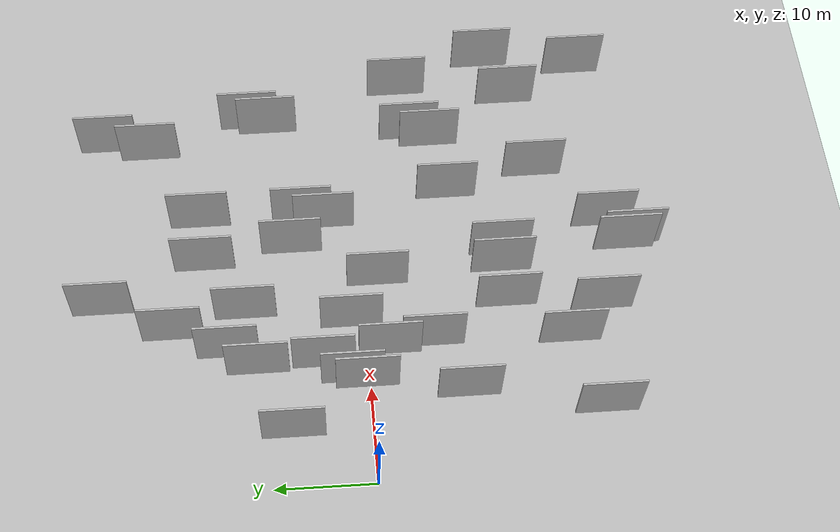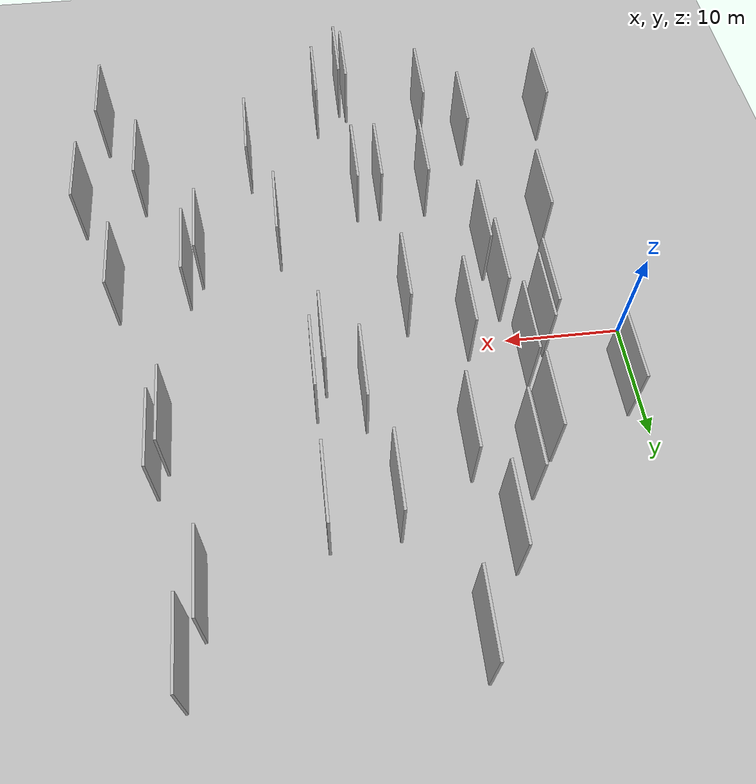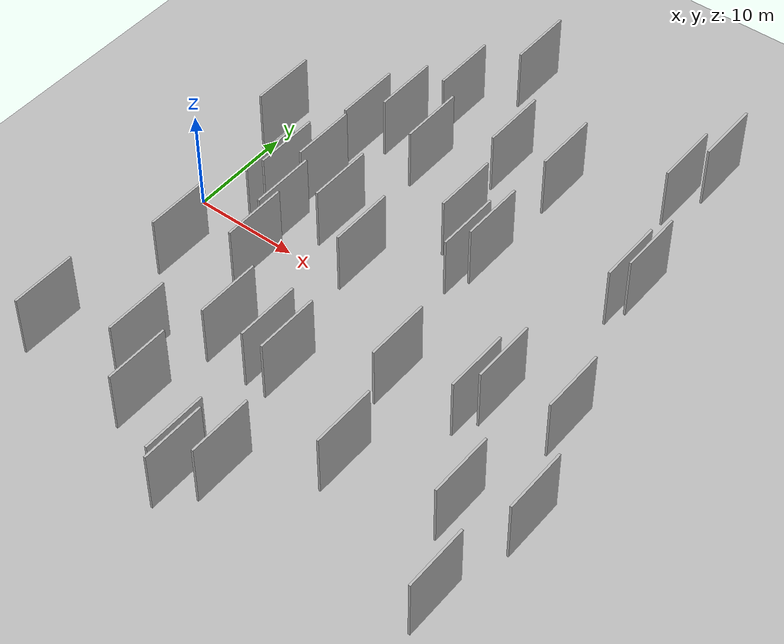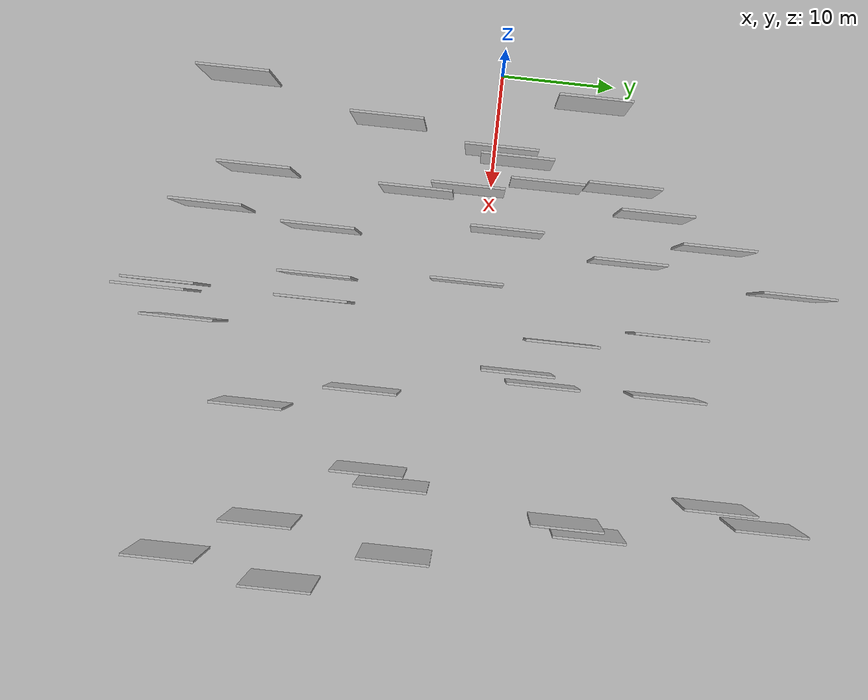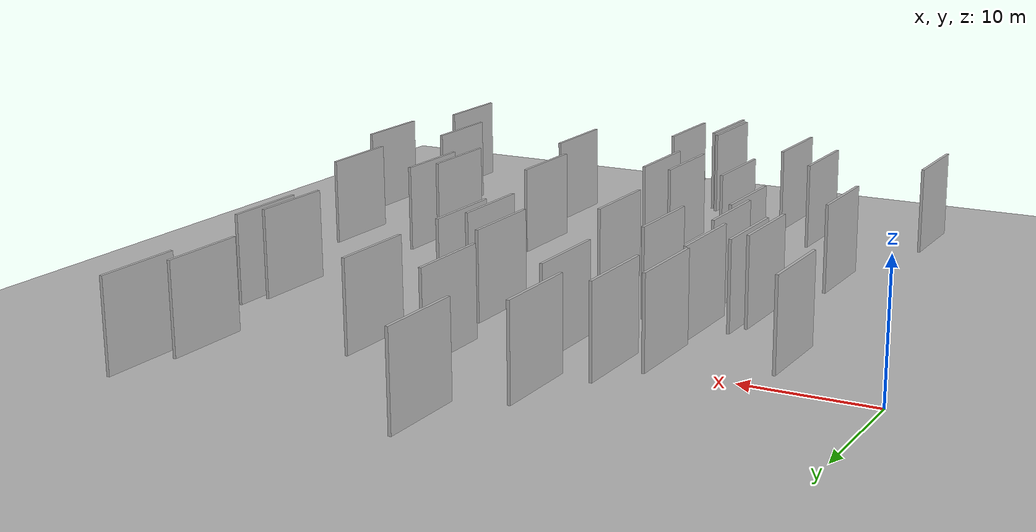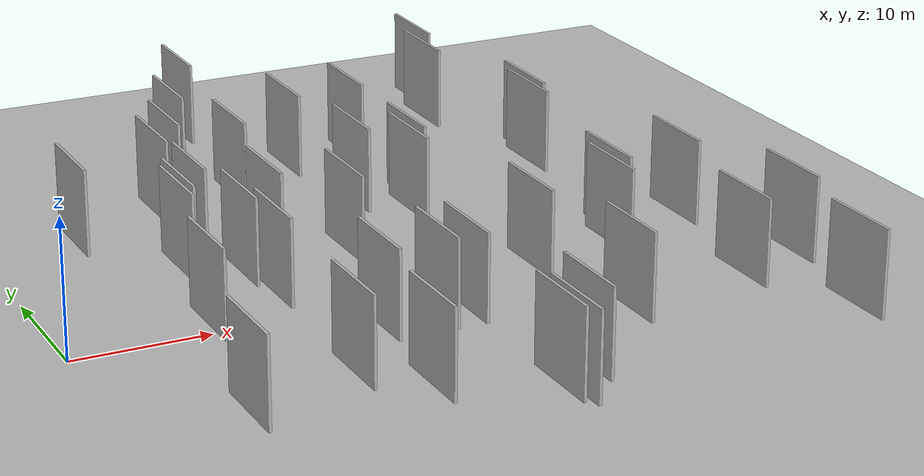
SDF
<?xml version="1.0" encoding="utf-8"?>

<sdf version="1.6">

   <world name="default">

      <gui fullscreen="0">

         <camera name="user_camera">

            <pose>-15 0 4.57585 0 0 0</pose>

            <view_controller>orbit</view_controller>

         </camera>

      </gui>

      <scene>

         <sky>

           <clouds>

             <speed>12</speed>

           </clouds>

         </sky>

         <ambient>0.4 0.4 0.4 1</ambient>

         <background>0.7 0.7 0.7 1</background>

         <shadows>1</shadows>

      </scene>

      <gravity>0 0 -9.8066</gravity>

      <magnetic_field>6e-06 2.3e-05 -4.2e-05</magnetic_field>

      <physics default="0" name="default_physics" type="ode">

         <ode>

            <solver>

               <type>quick</type>

               <iters>10</iters>

               <sor>1.0</sor>

               <use_dynamic_moi_rescaling>0</use_dynamic_moi_rescaling>

            </solver>

            <constraints>

               <cfm>0</cfm>

               <erp>0.2</erp>

               <contact_max_correcting_vel>100</contact_max_correcting_vel>

               <contact_surface_layer>0.001</contact_surface_layer>

            </constraints>

         </ode>

         <max_step_size>0.004</max_step_size>

         <real_time_factor>1</real_time_factor>

         <real_time_update_rate>250</real_time_update_rate>

      </physics>

      <light name="sun" type="directional">

         <cast_shadows>1</cast_shadows>

         <pose>0 0 10 0 0 0</pose>

         <diffuse>0.8 0.8 0.8 1</diffuse>

         <specular>0.2 0.2 0.2 1</specular>

         <attenuation>

            <range>1000</range>

            <constant>0.9</constant>

            <linear>0.01</linear>

            <quadratic>0.001</quadratic>

         </attenuation>

         <direction>-0.5 0.1 -0.9</direction>

      </light>

      <include>

         <name>ground_plane_1</name>

         <uri>model://HANNAS_ground_plane</uri>

         <pose>0 0 0  0 0 0</pose>

      </include>

      <include>

         <name>ground_plane_2</name>

         <uri>model://HANNAS_ground_plane</uri>

         <pose>100 0 0  0 0 0</pose>

      </include>

      <model name="HANNAS_wall_1">

         <static>1</static>

         <pose frame="">3.9259 -21.7571 5.0 0.000000 0.000000 1.570796</pose>

         <link name="link">

            <pose frame="">0 0 3.00 0 0 0</pose>

            <collision name="collision">

               <geometry>

                  <box>

                     <size>6.00 0.2 6.00</size>

                  </box>

               </geometry>

               <max_contacts>10</max_contacts>

               <surface>

                  <contact>

                     <ode/>

                  </contact>

                  <bounce/>

                  <friction>

                     <torsional>

                        <ode/>

                     </torsional>

                     <ode/>

                  </friction>

               </surface>

            </collision>

            <visual name="visual">

               <cast_shadows>0</cast_shadows>

               <geometry>

                  <box>

                     <size>6.00 0.2 6.00</size>

                  </box>

               </geometry>

               <material>

                  <script>

                     <uri>model://HANNAS_wall/materials/scripts</uri>

                     <uri>model://HANNAS_wall/materials/textures</uri>

                     <name>vrc/HANNAS_wall</name>

                  </script>

               </material>

            </visual>

            <self_collide>0</self_collide>

            <enable_wind>0</enable_wind>

            <kinematic>0</kinematic>

         </link>

      </model>

      <model name="HANNAS_wall_2">

         <static>1</static>

         <pose frame="">26.8779 5.8839 5.0 0.000000 0.000000 1.570796</pose>

         <link name="link">

            <pose frame="">0 0 3.00 0 0 0</pose>

            <collision name="collision">

               <geometry>

                  <box>

                     <size>6.00 0.2 6.00</size>

                  </box>

               </geometry>

               <max_contacts>10</max_contacts>

               <surface>

                  <contact>

                     <ode/>

                  </contact>

                  <bounce/>

                  <friction>

                     <torsional>

                        <ode/>

                     </torsional>

                     <ode/>

                  </friction>

               </surface>

            </collision>

            <visual name="visual">

               <cast_shadows>0</cast_shadows>

               <geometry>

                  <box>

                     <size>6.00 0.2 6.00</size>

                  </box>

               </geometry>

               <material>

                  <script>

                     <uri>model://HANNAS_wall/materials/scripts</uri>

                     <uri>model://HANNAS_wall/materials/textures</uri>

                     <name>vrc/HANNAS_wall</name>

                  </script>

               </material>

            </visual>

            <self_collide>0</self_collide>

            <enable_wind>0</enable_wind>

            <kinematic>0</kinematic>

         </link>

      </model>

      <model name="HANNAS_wall_3">

         <static>1</static>

         <pose frame="">36.7139 25.4663 5.0 0.000000 0.000000 1.570796</pose>

         <link name="link">

            <pose frame="">0 0 3.00 0 0 0</pose>

            <collision name="collision">

               <geometry>

                  <box>

                     <size>6.00 0.2 6.00</size>

                  </box>

               </geometry>

               <max_contacts>10</max_contacts>

               <surface>

                  <contact>

                     <ode/>

                  </contact>

                  <bounce/>

                  <friction>

                     <torsional>

                        <ode/>

                     </torsional>

                     <ode/>

                  </friction>

               </surface>

            </collision>

            <visual name="visual">

               <cast_shadows>0</cast_shadows>

               <geometry>

                  <box>

                     <size>6.00 0.2 6.00</size>

                  </box>

               </geometry>

               <material>

                  <script>

                     <uri>model://HANNAS_wall/materials/scripts</uri>

                     <uri>model://HANNAS_wall/materials/textures</uri>

                     <name>vrc/HANNAS_wall</name>

                  </script>

               </material>

            </visual>

            <self_collide>0</self_collide>

            <enable_wind>0</enable_wind>

            <kinematic>0</kinematic>

         </link>

      </model>

      <model name="HANNAS_wall_4">

         <static>1</static>

         <pose frame="">11.3556 -1.8661 5.0 0.000000 0.000000 1.570796</pose>

         <link name="link">

            <pose frame="">0 0 3.00 0 0 0</pose>

            <collision name="collision">

               <geometry>

                  <box>

                     <size>6.00 0.2 6.00</size>

                  </box>

               </geometry>

               <max_contacts>10</max_contacts>

               <surface>

                  <contact>

                     <ode/>

                  </contact>

                  <bounce/>

                  <friction>

                     <torsional>

                        <ode/>

                     </torsional>

                     <ode/>

                  </friction>

               </surface>

            </collision>

            <visual name="visual">

               <cast_shadows>0</cast_shadows>

               <geometry>

                  <box>

                     <size>6.00 0.2 6.00</size>

                  </box>

               </geometry>

               <material>

                  <script>

                     <uri>model://HANNAS_wall/materials/scripts</uri>

                     <uri>model://HANNAS_wall/materials/textures</uri>

                     <name>vrc/HANNAS_wall</name>

                  </script>

               </material>

            </visual>

            <self_collide>0</self_collide>

            <enable_wind>0</enable_wind>

            <kinematic>0</kinematic>

         </link>

      </model>

      <model name="HANNAS_wall_5">

         <static>1</static>

         <pose frame="">42.1782 -4.7063 5.0 0.000000 0.000000 1.570796</pose>

         <link name="link">

            <pose frame="">0 0 3.00 0 0 0</pose>

            <collision name="collision">

               <geometry>

                  <box>

                     <size>6.00 0.2 6.00</size>

                  </box>

               </geometry>

               <max_contacts>10</max_contacts>

               <surface>

                  <contact>

                     <ode/>

                  </contact>

                  <bounce/>

                  <friction>

                     <torsional>

                        <ode/>

                     </torsional>

                     <ode/>

                  </friction>

               </surface>

            </collision>

            <visual name="visual">

               <cast_shadows>0</cast_shadows>

               <geometry>

                  <box>

                     <size>6.00 0.2 6.00</size>

                  </box>

               </geometry>

               <material>

                  <script>

                     <uri>model://HANNAS_wall/materials/scripts</uri>

                     <uri>model://HANNAS_wall/materials/textures</uri>

                     <name>vrc/HANNAS_wall</name>

                  </script>

               </material>

            </visual>

            <self_collide>0</self_collide>

            <enable_wind>0</enable_wind>

            <kinematic>0</kinematic>

         </link>

      </model>

      <model name="HANNAS_wall_6">

         <static>1</static>

         <pose frame="">15.8145 -13.5879 5.0 0.000000 0.000000 1.570796</pose>

         <link name="link">

            <pose frame="">0 0 3.00 0 0 0</pose>

            <collision name="collision">

               <geometry>

                  <box>

                     <size>6.00 0.2 6.00</size>

                  </box>

               </geometry>

               <max_contacts>10</max_contacts>

               <surface>

                  <contact>

                     <ode/>

                  </contact>

                  <bounce/>

                  <friction>

                     <torsional>

                        <ode/>

                     </torsional>

                     <ode/>

                  </friction>

               </surface>

            </collision>

            <visual name="visual">

               <cast_shadows>0</cast_shadows>

               <geometry>

                  <box>

                     <size>6.00 0.2 6.00</size>

                  </box>

               </geometry>

               <material>

                  <script>

                     <uri>model://HANNAS_wall/materials/scripts</uri>

                     <uri>model://HANNAS_wall/materials/textures</uri>

                     <name>vrc/HANNAS_wall</name>

                  </script>

               </material>

            </visual>

            <self_collide>0</self_collide>

            <enable_wind>0</enable_wind>

            <kinematic>0</kinematic>

         </link>

      </model>

      <model name="HANNAS_wall_7">

         <static>1</static>

         <pose frame="">38.7719 10.8940 5.0 0.000000 0.000000 1.570796</pose>

         <link name="link">

            <pose frame="">0 0 3.00 0 0 0</pose>

            <collision name="collision">

               <geometry>

                  <box>

                     <size>6.00 0.2 6.00</size>

                  </box>

               </geometry>

               <max_contacts>10</max_contacts>

               <surface>

                  <contact>

                     <ode/>

                  </contact>

                  <bounce/>

                  <friction>

                     <torsional>

                        <ode/>

                     </torsional>

                     <ode/>

                  </friction>

               </surface>

            </collision>

            <visual name="visual">

               <cast_shadows>0</cast_shadows>

               <geometry>

                  <box>

                     <size>6.00 0.2 6.00</size>

                  </box>

               </geometry>

               <material>

                  <script>

                     <uri>model://HANNAS_wall/materials/scripts</uri>

                     <uri>model://HANNAS_wall/materials/textures</uri>

                     <name>vrc/HANNAS_wall</name>

                  </script>

               </material>

            </visual>

            <self_collide>0</self_collide>

            <enable_wind>0</enable_wind>

            <kinematic>0</kinematic>

         </link>

      </model>

      <model name="HANNAS_wall_8">

         <static>1</static>

         <pose frame="">3.2657 7.6805 5.0 0.000000 0.000000 1.570796</pose>

         <link name="link">

            <pose frame="">0 0 3.00 0 0 0</pose>

            <collision name="collision">

               <geometry>

                  <box>

                     <size>6.00 0.2 6.00</size>

                  </box>

               </geometry>

               <max_contacts>10</max_contacts>

               <surface>

                  <contact>

                     <ode/>

                  </contact>

                  <bounce/>

                  <friction>

                     <torsional>

                        <ode/>

                     </torsional>

                     <ode/>

                  </friction>

               </surface>

            </collision>

            <visual name="visual">

               <cast_shadows>0</cast_shadows>

               <geometry>

                  <box>

                     <size>6.00 0.2 6.00</size>

                  </box>

               </geometry>

               <material>

                  <script>

                     <uri>model://HANNAS_wall/materials/scripts</uri>

                     <uri>model://HANNAS_wall/materials/textures</uri>

                     <name>vrc/HANNAS_wall</name>

                  </script>

               </material>

            </visual>

            <self_collide>0</self_collide>

            <enable_wind>0</enable_wind>

            <kinematic>0</kinematic>

         </link>

      </model>

      <model name="HANNAS_wall_9">

         <static>1</static>

         <pose frame="">38.0455 9.0339 5.0 0.000000 0.000000 1.570796</pose>

         <link name="link">

            <pose frame="">0 0 3.00 0 0 0</pose>

            <collision name="collision">

               <geometry>

                  <box>

                     <size>6.00 0.2 6.00</size>

                  </box>

               </geometry>

               <max_contacts>10</max_contacts>

               <surface>

                  <contact>

                     <ode/>

                  </contact>

                  <bounce/>

                  <friction>

                     <torsional>

                        <ode/>

                     </torsional>

                     <ode/>

                  </friction>

               </surface>

            </collision>

            <visual name="visual">

               <cast_shadows>0</cast_shadows>

               <geometry>

                  <box>

                     <size>6.00 0.2 6.00</size>

                  </box>

               </geometry>

               <material>

                  <script>

                     <uri>model://HANNAS_wall/materials/scripts</uri>

                     <uri>model://HANNAS_wall/materials/textures</uri>

                     <name>vrc/HANNAS_wall</name>

                  </script>

               </material>

            </visual>

            <self_collide>0</self_collide>

            <enable_wind>0</enable_wind>

            <kinematic>0</kinematic>

         </link>

      </model>

      <model name="HANNAS_wall_10">

         <static>1</static>

         <pose frame="">17.4022 25.7129 5.0 0.000000 0.000000 1.570796</pose>

         <link name="link">

            <pose frame="">0 0 3.00 0 0 0</pose>

            <collision name="collision">

               <geometry>

                  <box>

                     <size>6.00 0.2 6.00</size>

                  </box>

               </geometry>

               <max_contacts>10</max_contacts>

               <surface>

                  <contact>

                     <ode/>

                  </contact>

                  <bounce/>

                  <friction>

                     <torsional>

                        <ode/>

                     </torsional>

                     <ode/>

                  </friction>

               </surface>

            </collision>

            <visual name="visual">

               <cast_shadows>0</cast_shadows>

               <geometry>

                  <box>

                     <size>6.00 0.2 6.00</size>

                  </box>

               </geometry>

               <material>

                  <script>

                     <uri>model://HANNAS_wall/materials/scripts</uri>

                     <uri>model://HANNAS_wall/materials/textures</uri>

                     <name>vrc/HANNAS_wall</name>

                  </script>

               </material>

            </visual>

            <self_collide>0</self_collide>

            <enable_wind>0</enable_wind>

            <kinematic>0</kinematic>

         </link>

      </model>

      <model name="HANNAS_wall_11">

         <static>1</static>

         <pose frame="">26.0199 3.7318 5.0 0.000000 0.000000 1.570796</pose>

         <link name="link">

            <pose frame="">0 0 3.00 0 0 0</pose>

            <collision name="collision">

               <geometry>

                  <box>

                     <size>6.00 0.2 6.00</size>

                  </box>

               </geometry>

               <max_contacts>10</max_contacts>

               <surface>

                  <contact>

                     <ode/>

                  </contact>

                  <bounce/>

                  <friction>

                     <torsional>

                        <ode/>

                     </torsional>

                     <ode/>

                  </friction>

               </surface>

            </collision>

            <visual name="visual">

               <cast_shadows>0</cast_shadows>

               <geometry>

                  <box>

                     <size>6.00 0.2 6.00</size>

                  </box>

               </geometry>

               <material>

                  <script>

                     <uri>model://HANNAS_wall/materials/scripts</uri>

                     <uri>model://HANNAS_wall/materials/textures</uri>

                     <name>vrc/HANNAS_wall</name>

                  </script>

               </material>

            </visual>

            <self_collide>0</self_collide>

            <enable_wind>0</enable_wind>

            <kinematic>0</kinematic>

         </link>

      </model>

      <model name="HANNAS_wall_12">

         <static>1</static>

         <pose frame="">7.9821 0.4993 5.0 0.000000 0.000000 1.570796</pose>

         <link name="link">

            <pose frame="">0 0 3.00 0 0 0</pose>

            <collision name="collision">

               <geometry>

                  <box>

                     <size>6.00 0.2 6.00</size>

                  </box>

               </geometry>

               <max_contacts>10</max_contacts>

               <surface>

                  <contact>

                     <ode/>

                  </contact>

                  <bounce/>

                  <friction>

                     <torsional>

                        <ode/>

                     </torsional>

                     <ode/>

                  </friction>

               </surface>

            </collision>

            <visual name="visual">

               <cast_shadows>0</cast_shadows>

               <geometry>

                  <box>

                     <size>6.00 0.2 6.00</size>

                  </box>

               </geometry>

               <material>

                  <script>

                     <uri>model://HANNAS_wall/materials/scripts</uri>

                     <uri>model://HANNAS_wall/materials/textures</uri>

                     <name>vrc/HANNAS_wall</name>

                  </script>

               </material>

            </visual>

            <self_collide>0</self_collide>

            <enable_wind>0</enable_wind>

            <kinematic>0</kinematic>

         </link>

      </model>

      <model name="HANNAS_wall_13">

         <static>1</static>

         <pose frame="">8.5940 1.8616 5.0 0.000000 0.000000 1.570796</pose>

         <link name="link">

            <pose frame="">0 0 3.00 0 0 0</pose>

            <collision name="collision">

               <geometry>

                  <box>

                     <size>6.00 0.2 6.00</size>

                  </box>

               </geometry>

               <max_contacts>10</max_contacts>

               <surface>

                  <contact>

                     <ode/>

                  </contact>

                  <bounce/>

                  <friction>

                     <torsional>

                        <ode/>

                     </torsional>

                     <ode/>

                  </friction>

               </surface>

            </collision>

            <visual name="visual">

               <cast_shadows>0</cast_shadows>

               <geometry>

                  <box>

                     <size>6.00 0.2 6.00</size>

                  </box>

               </geometry>

               <material>

                  <script>

                     <uri>model://HANNAS_wall/materials/scripts</uri>

                     <uri>model://HANNAS_wall/materials/textures</uri>

                     <name>vrc/HANNAS_wall</name>

                  </script>

               </material>

            </visual>

            <self_collide>0</self_collide>

            <enable_wind>0</enable_wind>

            <kinematic>0</kinematic>

         </link>

      </model>

      <model name="HANNAS_wall_14">

         <static>1</static>

         <pose frame="">43.8966 -23.6323 5.0 0.000000 0.000000 1.570796</pose>

         <link name="link">

            <pose frame="">0 0 3.00 0 0 0</pose>

            <collision name="collision">

               <geometry>

                  <box>

                     <size>6.00 0.2 6.00</size>

                  </box>

               </geometry>

               <max_contacts>10</max_contacts>

               <surface>

                  <contact>

                     <ode/>

                  </contact>

                  <bounce/>

                  <friction>

                     <torsional>

                        <ode/>

                     </torsional>

                     <ode/>

                  </friction>

               </surface>

            </collision>

            <visual name="visual">

               <cast_shadows>0</cast_shadows>

               <geometry>

                  <box>

                     <size>6.00 0.2 6.00</size>

                  </box>

               </geometry>

               <material>

                  <script>

                     <uri>model://HANNAS_wall/materials/scripts</uri>

                     <uri>model://HANNAS_wall/materials/textures</uri>

                     <name>vrc/HANNAS_wall</name>

                  </script>

               </material>

            </visual>

            <self_collide>0</self_collide>

            <enable_wind>0</enable_wind>

            <kinematic>0</kinematic>

         </link>

      </model>

      <model name="HANNAS_wall_15">

         <static>1</static>

         <pose frame="">21.7795 15.7730 5.0 0.000000 0.000000 1.570796</pose>

         <link name="link">

            <pose frame="">0 0 3.00 0 0 0</pose>

            <collision name="collision">

               <geometry>

                  <box>

                     <size>6.00 0.2 6.00</size>

                  </box>

               </geometry>

               <max_contacts>10</max_contacts>

               <surface>

                  <contact>

                     <ode/>

                  </contact>

                  <bounce/>

                  <friction>

                     <torsional>

                        <ode/>

                     </torsional>

                     <ode/>

                  </friction>

               </surface>

            </collision>

            <visual name="visual">

               <cast_shadows>0</cast_shadows>

               <geometry>

                  <box>

                     <size>6.00 0.2 6.00</size>

                  </box>

               </geometry>

               <material>

                  <script>

                     <uri>model://HANNAS_wall/materials/scripts</uri>

                     <uri>model://HANNAS_wall/materials/textures</uri>

                     <name>vrc/HANNAS_wall</name>

                  </script>

               </material>

            </visual>

            <self_collide>0</self_collide>

            <enable_wind>0</enable_wind>

            <kinematic>0</kinematic>

         </link>

      </model>

      <model name="HANNAS_wall_16">

         <static>1</static>

         <pose frame="">10.0365 10.7989 5.0 0.000000 0.000000 1.570796</pose>

         <link name="link">

            <pose frame="">0 0 3.00 0 0 0</pose>

            <collision name="collision">

               <geometry>

                  <box>

                     <size>6.00 0.2 6.00</size>

                  </box>

               </geometry>

               <max_contacts>10</max_contacts>

               <surface>

                  <contact>

                     <ode/>

                  </contact>

                  <bounce/>

                  <friction>

                     <torsional>

                        <ode/>

                     </torsional>

                     <ode/>

                  </friction>

               </surface>

            </collision>

            <visual name="visual">

               <cast_shadows>0</cast_shadows>

               <geometry>

                  <box>

                     <size>6.00 0.2 6.00</size>

                  </box>

               </geometry>

               <material>

                  <script>

                     <uri>model://HANNAS_wall/materials/scripts</uri>

                     <uri>model://HANNAS_wall/materials/textures</uri>

                     <name>vrc/HANNAS_wall</name>

                  </script>

               </material>

            </visual>

            <self_collide>0</self_collide>

            <enable_wind>0</enable_wind>

            <kinematic>0</kinematic>

         </link>

      </model>

      <model name="HANNAS_wall_17">

         <static>1</static>

         <pose frame="">26.8397 16.1362 5.0 0.000000 0.000000 1.570796</pose>

         <link name="link">

            <pose frame="">0 0 3.00 0 0 0</pose>

            <collision name="collision">

               <geometry>

                  <box>

                     <size>6.00 0.2 6.00</size>

                  </box>

               </geometry>

               <max_contacts>10</max_contacts>

               <surface>

                  <contact>

                     <ode/>

                  </contact>

                  <bounce/>

                  <friction>

                     <torsional>

                        <ode/>

                     </torsional>

                     <ode/>

                  </friction>

               </surface>

            </collision>

            <visual name="visual">

               <cast_shadows>0</cast_shadows>

               <geometry>

                  <box>

                     <size>6.00 0.2 6.00</size>

                  </box>

               </geometry>

               <material>

                  <script>

                     <uri>model://HANNAS_wall/materials/scripts</uri>

                     <uri>model://HANNAS_wall/materials/textures</uri>

                     <name>vrc/HANNAS_wall</name>

                  </script>

               </material>

            </visual>

            <self_collide>0</self_collide>

            <enable_wind>0</enable_wind>

            <kinematic>0</kinematic>

         </link>

      </model>

      <model name="HANNAS_wall_18">

         <static>1</static>

         <pose frame="">14.5196 1.6398 5.0 0.000000 0.000000 1.570796</pose>

         <link name="link">

            <pose frame="">0 0 3.00 0 0 0</pose>

            <collision name="collision">

               <geometry>

                  <box>

                     <size>6.00 0.2 6.00</size>

                  </box>

               </geometry>

               <max_contacts>10</max_contacts>

               <surface>

                  <contact>

                     <ode/>

                  </contact>

                  <bounce/>

                  <friction>

                     <torsional>

                        <ode/>

                     </torsional>

                     <ode/>

                  </friction>

               </surface>

            </collision>

            <visual name="visual">

               <cast_shadows>0</cast_shadows>

               <geometry>

                  <box>

                     <size>6.00 0.2 6.00</size>

                  </box>

               </geometry>

               <material>

                  <script>

                     <uri>model://HANNAS_wall/materials/scripts</uri>

                     <uri>model://HANNAS_wall/materials/textures</uri>

                     <name>vrc/HANNAS_wall</name>

                  </script>

               </material>

            </visual>

            <self_collide>0</self_collide>

            <enable_wind>0</enable_wind>

            <kinematic>0</kinematic>

         </link>

      </model>

      <model name="HANNAS_wall_19">

         <static>1</static>

         <pose frame="">30.9161 -17.8675 5.0 0.000000 0.000000 1.570796</pose>

         <link name="link">

            <pose frame="">0 0 3.00 0 0 0</pose>

            <collision name="collision">

               <geometry>

                  <box>

                     <size>6.00 0.2 6.00</size>

                  </box>

               </geometry>

               <max_contacts>10</max_contacts>

               <surface>

                  <contact>

                     <ode/>

                  </contact>

                  <bounce/>

                  <friction>

                     <torsional>

                        <ode/>

                     </torsional>

                     <ode/>

                  </friction>

               </surface>

            </collision>

            <visual name="visual">

               <cast_shadows>0</cast_shadows>

               <geometry>

                  <box>

                     <size>6.00 0.2 6.00</size>

                  </box>

               </geometry>

               <material>

                  <script>

                     <uri>model://HANNAS_wall/materials/scripts</uri>

                     <uri>model://HANNAS_wall/materials/textures</uri>

                     <name>vrc/HANNAS_wall</name>

                  </script>

               </material>

            </visual>

            <self_collide>0</self_collide>

            <enable_wind>0</enable_wind>

            <kinematic>0</kinematic>

         </link>

      </model>

      <model name="HANNAS_wall_20">

         <static>1</static>

         <pose frame="">11.5181 -19.2838 5.0 0.000000 0.000000 1.570796</pose>

         <link name="link">

            <pose frame="">0 0 3.00 0 0 0</pose>

            <collision name="collision">

               <geometry>

                  <box>

                     <size>6.00 0.2 6.00</size>

                  </box>

               </geometry>

               <max_contacts>10</max_contacts>

               <surface>

                  <contact>

                     <ode/>

                  </contact>

                  <bounce/>

                  <friction>

                     <torsional>

                        <ode/>

                     </torsional>

                     <ode/>

                  </friction>

               </surface>

            </collision>

            <visual name="visual">

               <cast_shadows>0</cast_shadows>

               <geometry>

                  <box>

                     <size>6.00 0.2 6.00</size>

                  </box>

               </geometry>

               <material>

                  <script>

                     <uri>model://HANNAS_wall/materials/scripts</uri>

                     <uri>model://HANNAS_wall/materials/textures</uri>

                     <name>vrc/HANNAS_wall</name>

                  </script>

               </material>

            </visual>

            <self_collide>0</self_collide>

            <enable_wind>0</enable_wind>

            <kinematic>0</kinematic>

         </link>

      </model>

      <model name="HANNAS_wall_21">

         <static>1</static>

         <pose frame="">45.3919 -13.9684 5.0 0.000000 0.000000 1.570796</pose>

         <link name="link">

            <pose frame="">0 0 3.00 0 0 0</pose>

            <collision name="collision">

               <geometry>

                  <box>

                     <size>6.00 0.2 6.00</size>

                  </box>

               </geometry>

               <max_contacts>10</max_contacts>

               <surface>

                  <contact>

                     <ode/>

                  </contact>

                  <bounce/>

                  <friction>

                     <torsional>

                        <ode/>

                     </torsional>

                     <ode/>

                  </friction>

               </surface>

            </collision>

            <visual name="visual">

               <cast_shadows>0</cast_shadows>

               <geometry>

                  <box>

                     <size>6.00 0.2 6.00</size>

                  </box>

               </geometry>

               <material>

                  <script>

                     <uri>model://HANNAS_wall/materials/scripts</uri>

                     <uri>model://HANNAS_wall/materials/textures</uri>

                     <name>vrc/HANNAS_wall</name>

                  </script>

               </material>

            </visual>

            <self_collide>0</self_collide>

            <enable_wind>0</enable_wind>

            <kinematic>0</kinematic>

         </link>

      </model>

      <model name="HANNAS_wall_22">

         <static>1</static>

         <pose frame="">19.0229 -1.1581 5.0 0.000000 0.000000 1.570796</pose>

         <link name="link">

            <pose frame="">0 0 3.00 0 0 0</pose>

            <collision name="collision">

               <geometry>

                  <box>

                     <size>6.00 0.2 6.00</size>

                  </box>

               </geometry>

               <max_contacts>10</max_contacts>

               <surface>

                  <contact>

                     <ode/>

                  </contact>

                  <bounce/>

                  <friction>

                     <torsional>

                        <ode/>

                     </torsional>

                     <ode/>

                  </friction>

               </surface>

            </collision>

            <visual name="visual">

               <cast_shadows>0</cast_shadows>

               <geometry>

                  <box>

                     <size>6.00 0.2 6.00</size>

                  </box>

               </geometry>

               <material>

                  <script>

                     <uri>model://HANNAS_wall/materials/scripts</uri>

                     <uri>model://HANNAS_wall/materials/textures</uri>

                     <name>vrc/HANNAS_wall</name>

                  </script>

               </material>

            </visual>

            <self_collide>0</self_collide>

            <enable_wind>0</enable_wind>

            <kinematic>0</kinematic>

         </link>

      </model>

      <model name="HANNAS_wall_23">

         <static>1</static>

         <pose frame="">16.0900 11.8398 5.0 0.000000 0.000000 1.570796</pose>

         <link name="link">

            <pose frame="">0 0 3.00 0 0 0</pose>

            <collision name="collision">

               <geometry>

                  <box>

                     <size>6.00 0.2 6.00</size>

                  </box>

               </geometry>

               <max_contacts>10</max_contacts>

               <surface>

                  <contact>

                     <ode/>

                  </contact>

                  <bounce/>

                  <friction>

                     <torsional>

                        <ode/>

                     </torsional>

                     <ode/>

                  </friction>

               </surface>

            </collision>

            <visual name="visual">

               <cast_shadows>0</cast_shadows>

               <geometry>

                  <box>

                     <size>6.00 0.2 6.00</size>

                  </box>

               </geometry>

               <material>

                  <script>

                     <uri>model://HANNAS_wall/materials/scripts</uri>

                     <uri>model://HANNAS_wall/materials/textures</uri>

                     <name>vrc/HANNAS_wall</name>

                  </script>

               </material>

            </visual>

            <self_collide>0</self_collide>

            <enable_wind>0</enable_wind>

            <kinematic>0</kinematic>

         </link>

      </model>

      <model name="HANNAS_wall_24">

         <static>1</static>

         <pose frame="">23.2477 7.0953 5.0 0.000000 0.000000 1.570796</pose>

         <link name="link">

            <pose frame="">0 0 3.00 0 0 0</pose>

            <collision name="collision">

               <geometry>

                  <box>

                     <size>6.00 0.2 6.00</size>

                  </box>

               </geometry>

               <max_contacts>10</max_contacts>

               <surface>

                  <contact>

                     <ode/>

                  </contact>

                  <bounce/>

                  <friction>

                     <torsional>

                        <ode/>

                     </torsional>

                     <ode/>

                  </friction>

               </surface>

            </collision>

            <visual name="visual">

               <cast_shadows>0</cast_shadows>

               <geometry>

                  <box>

                     <size>6.00 0.2 6.00</size>

                  </box>

               </geometry>

               <material>

                  <script>

                     <uri>model://HANNAS_wall/materials/scripts</uri>

                     <uri>model://HANNAS_wall/materials/textures</uri>

                     <name>vrc/HANNAS_wall</name>

                  </script>

               </material>

            </visual>

            <self_collide>0</self_collide>

            <enable_wind>0</enable_wind>

            <kinematic>0</kinematic>

         </link>

      </model>

      <model name="HANNAS_wall_25">

         <static>1</static>

         <pose frame="">11.9560 -6.0699 5.0 0.000000 0.000000 1.570796</pose>

         <link name="link">

            <pose frame="">0 0 3.00 0 0 0</pose>

            <collision name="collision">

               <geometry>

                  <box>

                     <size>6.00 0.2 6.00</size>

                  </box>

               </geometry>

               <max_contacts>10</max_contacts>

               <surface>

                  <contact>

                     <ode/>

                  </contact>

                  <bounce/>

                  <friction>

                     <torsional>

                        <ode/>

                     </torsional>

                     <ode/>

                  </friction>

               </surface>

            </collision>

            <visual name="visual">

               <cast_shadows>0</cast_shadows>

               <geometry>

                  <box>

                     <size>6.00 0.2 6.00</size>

                  </box>

               </geometry>

               <material>

                  <script>

                     <uri>model://HANNAS_wall/materials/scripts</uri>

                     <uri>model://HANNAS_wall/materials/textures</uri>

                     <name>vrc/HANNAS_wall</name>

                  </script>

               </material>

            </visual>

            <self_collide>0</self_collide>

            <enable_wind>0</enable_wind>

            <kinematic>0</kinematic>

         </link>

      </model>

      <model name="HANNAS_wall_26">

         <static>1</static>

         <pose frame="">10.3562 4.5099 5.0 0.000000 0.000000 1.570796</pose>

         <link name="link">

            <pose frame="">0 0 3.00 0 0 0</pose>

            <collision name="collision">

               <geometry>

                  <box>

                     <size>6.00 0.2 6.00</size>

                  </box>

               </geometry>

               <max_contacts>10</max_contacts>

               <surface>

                  <contact>

                     <ode/>

                  </contact>

                  <bounce/>

                  <friction>

                     <torsional>

                        <ode/>

                     </torsional>

                     <ode/>

                  </friction>

               </surface>

            </collision>

            <visual name="visual">

               <cast_shadows>0</cast_shadows>

               <geometry>

                  <box>

                     <size>6.00 0.2 6.00</size>

                  </box>

               </geometry>

               <material>

                  <script>

                     <uri>model://HANNAS_wall/materials/scripts</uri>

                     <uri>model://HANNAS_wall/materials/textures</uri>

                     <name>vrc/HANNAS_wall</name>

                  </script>

               </material>

            </visual>

            <self_collide>0</self_collide>

            <enable_wind>0</enable_wind>

            <kinematic>0</kinematic>

         </link>

      </model>

      <model name="HANNAS_wall_27">

         <static>1</static>

         <pose frame="">14.9009 -22.8455 5.0 0.000000 0.000000 1.570796</pose>

         <link name="link">

            <pose frame="">0 0 3.00 0 0 0</pose>

            <collision name="collision">

               <geometry>

                  <box>

                     <size>6.00 0.2 6.00</size>

                  </box>

               </geometry>

               <max_contacts>10</max_contacts>

               <surface>

                  <contact>

                     <ode/>

                  </contact>

                  <bounce/>

                  <friction>

                     <torsional>

                        <ode/>

                     </torsional>

                     <ode/>

                  </friction>

               </surface>

            </collision>

            <visual name="visual">

               <cast_shadows>0</cast_shadows>

               <geometry>

                  <box>

                     <size>6.00 0.2 6.00</size>

                  </box>

               </geometry>

               <material>

                  <script>

                     <uri>model://HANNAS_wall/materials/scripts</uri>

                     <uri>model://HANNAS_wall/materials/textures</uri>

                     <name>vrc/HANNAS_wall</name>

                  </script>

               </material>

            </visual>

            <self_collide>0</self_collide>

            <enable_wind>0</enable_wind>

            <kinematic>0</kinematic>

         </link>

      </model>

      <model name="HANNAS_wall_28">

         <static>1</static>

         <pose frame="">14.2074 18.8831 5.0 0.000000 0.000000 1.570796</pose>

         <link name="link">

            <pose frame="">0 0 3.00 0 0 0</pose>

            <collision name="collision">

               <geometry>

                  <box>

                     <size>6.00 0.2 6.00</size>

                  </box>

               </geometry>

               <max_contacts>10</max_contacts>

               <surface>

                  <contact>

                     <ode/>

                  </contact>

                  <bounce/>

                  <friction>

                     <torsional>

                        <ode/>

                     </torsional>

                     <ode/>

                  </friction>

               </surface>

            </collision>

            <visual name="visual">

               <cast_shadows>0</cast_shadows>

               <geometry>

                  <box>

                     <size>6.00 0.2 6.00</size>

                  </box>

               </geometry>

               <material>

                  <script>

                     <uri>model://HANNAS_wall/materials/scripts</uri>

                     <uri>model://HANNAS_wall/materials/textures</uri>

                     <name>vrc/HANNAS_wall</name>

                  </script>

               </material>

            </visual>

            <self_collide>0</self_collide>

            <enable_wind>0</enable_wind>

            <kinematic>0</kinematic>

         </link>

      </model>

      <model name="HANNAS_wall_29">

         <static>1</static>

         <pose frame="">35.3773 -7.5864 5.0 0.000000 0.000000 1.570796</pose>

         <link name="link">

            <pose frame="">0 0 3.00 0 0 0</pose>

            <collision name="collision">

               <geometry>

                  <box>

                     <size>6.00 0.2 6.00</size>

                  </box>

               </geometry>

               <max_contacts>10</max_contacts>

               <surface>

                  <contact>

                     <ode/>

                  </contact>

                  <bounce/>

                  <friction>

                     <torsional>

                        <ode/>

                     </torsional>

                     <ode/>

                  </friction>

               </surface>

            </collision>

            <visual name="visual">

               <cast_shadows>0</cast_shadows>

               <geometry>

                  <box>

                     <size>6.00 0.2 6.00</size>

                  </box>

               </geometry>

               <material>

                  <script>

                     <uri>model://HANNAS_wall/materials/scripts</uri>

                     <uri>model://HANNAS_wall/materials/textures</uri>

                     <name>vrc/HANNAS_wall</name>

                  </script>

               </material>

            </visual>

            <self_collide>0</self_collide>

            <enable_wind>0</enable_wind>

            <kinematic>0</kinematic>

         </link>

      </model>

      <model name="HANNAS_wall_30">

         <static>1</static>

         <pose frame="">28.7847 -8.8070 5.0 0.000000 0.000000 1.570796</pose>

         <link name="link">

            <pose frame="">0 0 3.00 0 0 0</pose>

            <collision name="collision">

               <geometry>

                  <box>

                     <size>6.00 0.2 6.00</size>

                  </box>

               </geometry>

               <max_contacts>10</max_contacts>

               <surface>

                  <contact>

                     <ode/>

                  </contact>

                  <bounce/>

                  <friction>

                     <torsional>

                        <ode/>

                     </torsional>

                     <ode/>

                  </friction>

               </surface>

            </collision>

            <visual name="visual">

               <cast_shadows>0</cast_shadows>

               <geometry>

                  <box>

                     <size>6.00 0.2 6.00</size>

                  </box>

               </geometry>

               <material>

                  <script>

                     <uri>model://HANNAS_wall/materials/scripts</uri>

                     <uri>model://HANNAS_wall/materials/textures</uri>

                     <name>vrc/HANNAS_wall</name>

                  </script>

               </material>

            </visual>

            <self_collide>0</self_collide>

            <enable_wind>0</enable_wind>

            <kinematic>0</kinematic>

         </link>

      </model>

      <model name="HANNAS_wall_31">

         <static>1</static>

         <pose frame="">21.7686 -13.5396 5.0 0.000000 0.000000 1.570796</pose>

         <link name="link">

            <pose frame="">0 0 3.00 0 0 0</pose>

            <collision name="collision">

               <geometry>

                  <box>

                     <size>6.00 0.2 6.00</size>

                  </box>

               </geometry>

               <max_contacts>10</max_contacts>

               <surface>

                  <contact>

                     <ode/>

                  </contact>

                  <bounce/>

                  <friction>

                     <torsional>

                        <ode/>

                     </torsional>

                     <ode/>

                  </friction>

               </surface>

            </collision>

            <visual name="visual">

               <cast_shadows>0</cast_shadows>

               <geometry>

                  <box>

                     <size>6.00 0.2 6.00</size>

                  </box>

               </geometry>

               <material>

                  <script>

                     <uri>model://HANNAS_wall/materials/scripts</uri>

                     <uri>model://HANNAS_wall/materials/textures</uri>

                     <name>vrc/HANNAS_wall</name>

                  </script>

               </material>

            </visual>

            <self_collide>0</self_collide>

            <enable_wind>0</enable_wind>

            <kinematic>0</kinematic>

         </link>

      </model>

      <model name="HANNAS_wall_32">

         <static>1</static>

         <pose frame="">21.5791 -26.0073 5.0 0.000000 0.000000 1.570796</pose>

         <link name="link">

            <pose frame="">0 0 3.00 0 0 0</pose>

            <collision name="collision">

               <geometry>

                  <box>

                     <size>6.00 0.2 6.00</size>

                  </box>

               </geometry>

               <max_contacts>10</max_contacts>

               <surface>

                  <contact>

                     <ode/>

                  </contact>

                  <bounce/>

                  <friction>

                     <torsional>

                        <ode/>

                     </torsional>

                     <ode/>

                  </friction>

               </surface>

            </collision>

            <visual name="visual">

               <cast_shadows>0</cast_shadows>

               <geometry>

                  <box>

                     <size>6.00 0.2 6.00</size>

                  </box>

               </geometry>

               <material>

                  <script>

                     <uri>model://HANNAS_wall/materials/scripts</uri>

                     <uri>model://HANNAS_wall/materials/textures</uri>

                     <name>vrc/HANNAS_wall</name>

                  </script>

               </material>

            </visual>

            <self_collide>0</self_collide>

            <enable_wind>0</enable_wind>

            <kinematic>0</kinematic>

         </link>

      </model>

      <model name="HANNAS_wall_33">

         <static>1</static>

         <pose frame="">6.3853 -8.9904 5.0 0.000000 0.000000 1.570796</pose>

         <link name="link">

            <pose frame="">0 0 3.00 0 0 0</pose>

            <collision name="collision">

               <geometry>

                  <box>

                     <size>6.00 0.2 6.00</size>

                  </box>

               </geometry>

               <max_contacts>10</max_contacts>

               <surface>

                  <contact>

                     <ode/>

                  </contact>

                  <bounce/>

                  <friction>

                     <torsional>

                        <ode/>

                     </torsional>

                     <ode/>

                  </friction>

               </surface>

            </collision>

            <visual name="visual">

               <cast_shadows>0</cast_shadows>

               <geometry>

                  <box>

                     <size>6.00 0.2 6.00</size>

                  </box>

               </geometry>

               <material>

                  <script>

                     <uri>model://HANNAS_wall/materials/scripts</uri>

                     <uri>model://HANNAS_wall/materials/textures</uri>

                     <name>vrc/HANNAS_wall</name>

                  </script>

               </material>

            </visual>

            <self_collide>0</self_collide>

            <enable_wind>0</enable_wind>

            <kinematic>0</kinematic>

         </link>

      </model>

      <model name="HANNAS_wall_34">

         <static>1</static>

         <pose frame="">11.9629 13.6195 5.0 0.000000 0.000000 1.570796</pose>

         <link name="link">

            <pose frame="">0 0 3.00 0 0 0</pose>

            <collision name="collision">

               <geometry>

                  <box>

                     <size>6.00 0.2 6.00</size>

                  </box>

               </geometry>

               <max_contacts>10</max_contacts>

               <surface>

                  <contact>

                     <ode/>

                  </contact>

                  <bounce/>

                  <friction>

                     <torsional>

                        <ode/>

                     </torsional>

                     <ode/>

                  </friction>

               </surface>

            </collision>

            <visual name="visual">

               <cast_shadows>0</cast_shadows>

               <geometry>

                  <box>

                     <size>6.00 0.2 6.00</size>

                  </box>

               </geometry>

               <material>

                  <script>

                     <uri>model://HANNAS_wall/materials/scripts</uri>

                     <uri>model://HANNAS_wall/materials/textures</uri>

                     <name>vrc/HANNAS_wall</name>

                  </script>

               </material>

            </visual>

            <self_collide>0</self_collide>

            <enable_wind>0</enable_wind>

            <kinematic>0</kinematic>

         </link>

      </model>

      <model name="HANNAS_wall_35">

         <static>1</static>

         <pose frame="">24.4232 -24.1632 5.0 0.000000 0.000000 1.570796</pose>

         <link name="link">

            <pose frame="">0 0 3.00 0 0 0</pose>

            <collision name="collision">

               <geometry>

                  <box>

                     <size>6.00 0.2 6.00</size>

                  </box>

               </geometry>

               <max_contacts>10</max_contacts>

               <surface>

                  <contact>

                     <ode/>

                  </contact>

                  <bounce/>

                  <friction>

                     <torsional>

                        <ode/>

                     </torsional>

                     <ode/>

                  </friction>

               </surface>

            </collision>

            <visual name="visual">

               <cast_shadows>0</cast_shadows>

               <geometry>

                  <box>

                     <size>6.00 0.2 6.00</size>

                  </box>

               </geometry>

               <material>

                  <script>

                     <uri>model://HANNAS_wall/materials/scripts</uri>

                     <uri>model://HANNAS_wall/materials/textures</uri>

                     <name>vrc/HANNAS_wall</name>

                  </script>

               </material>

            </visual>

            <self_collide>0</self_collide>

            <enable_wind>0</enable_wind>

            <kinematic>0</kinematic>

         </link>

      </model>

      <model name="HANNAS_wall_36">

         <static>1</static>

         <pose frame="">19.7768 -13.5049 5.0 0.000000 0.000000 1.570796</pose>

         <link name="link">

            <pose frame="">0 0 3.00 0 0 0</pose>

            <collision name="collision">

               <geometry>

                  <box>

                     <size>6.00 0.2 6.00</size>

                  </box>

               </geometry>

               <max_contacts>10</max_contacts>

               <surface>

                  <contact>

                     <ode/>

                  </contact>

                  <bounce/>

                  <friction>

                     <torsional>

                        <ode/>

                     </torsional>

                     <ode/>

                  </friction>

               </surface>

            </collision>

            <visual name="visual">

               <cast_shadows>0</cast_shadows>

               <geometry>

                  <box>

                     <size>6.00 0.2 6.00</size>

                  </box>

               </geometry>

               <material>

                  <script>

                     <uri>model://HANNAS_wall/materials/scripts</uri>

                     <uri>model://HANNAS_wall/materials/textures</uri>

                     <name>vrc/HANNAS_wall</name>

                  </script>

               </material>

            </visual>

            <self_collide>0</self_collide>

            <enable_wind>0</enable_wind>

            <kinematic>0</kinematic>

         </link>

      </model>

      <model name="HANNAS_wall_37">

         <static>1</static>

         <pose frame="">35.4725 21.2256 5.0 0.000000 0.000000 1.570796</pose>

         <link name="link">

            <pose frame="">0 0 3.00 0 0 0</pose>

            <collision name="collision">

               <geometry>

                  <box>

                     <size>6.00 0.2 6.00</size>

                  </box>

               </geometry>

               <max_contacts>10</max_contacts>

               <surface>

                  <contact>

                     <ode/>

                  </contact>

                  <bounce/>

                  <friction>

                     <torsional>

                        <ode/>

                     </torsional>

                     <ode/>

                  </friction>

               </surface>

            </collision>

            <visual name="visual">

               <cast_shadows>0</cast_shadows>

               <geometry>

                  <box>

                     <size>6.00 0.2 6.00</size>

                  </box>

               </geometry>

               <material>

                  <script>

                     <uri>model://HANNAS_wall/materials/scripts</uri>

                     <uri>model://HANNAS_wall/materials/textures</uri>

                     <name>vrc/HANNAS_wall</name>

                  </script>

               </material>

            </visual>

            <self_collide>0</self_collide>

            <enable_wind>0</enable_wind>

            <kinematic>0</kinematic>

         </link>

      </model>

      <model name="HANNAS_wall_38">

         <static>1</static>

         <pose frame="">40.3568 -16.1003 5.0 0.000000 0.000000 1.570796</pose>

         <link name="link">

            <pose frame="">0 0 3.00 0 0 0</pose>

            <collision name="collision">

               <geometry>

                  <box>

                     <size>6.00 0.2 6.00</size>

                  </box>

               </geometry>

               <max_contacts>10</max_contacts>

               <surface>

                  <contact>

                     <ode/>

                  </contact>

                  <bounce/>

                  <friction>

                     <torsional>

                        <ode/>

                     </torsional>

                     <ode/>

                  </friction>

               </surface>

            </collision>

            <visual name="visual">

               <cast_shadows>0</cast_shadows>

               <geometry>

                  <box>

                     <size>6.00 0.2 6.00</size>

                  </box>

               </geometry>

               <material>

                  <script>

                     <uri>model://HANNAS_wall/materials/scripts</uri>

                     <uri>model://HANNAS_wall/materials/textures</uri>

                     <name>vrc/HANNAS_wall</name>

                  </script>

               </material>

            </visual>

            <self_collide>0</self_collide>

            <enable_wind>0</enable_wind>

            <kinematic>0</kinematic>

         </link>

      </model>

      <model name="HANNAS_wall_39">

         <static>1</static>

         <pose frame="">22.1555 -26.7448 5.0 0.000000 0.000000 1.570796</pose>

         <link name="link">

            <pose frame="">0 0 3.00 0 0 0</pose>

            <collision name="collision">

               <geometry>

                  <box>

                     <size>6.00 0.2 6.00</size>

                  </box>

               </geometry>

               <max_contacts>10</max_contacts>

               <surface>

                  <contact>

                     <ode/>

                  </contact>

                  <bounce/>

                  <friction>

                     <torsional>

                        <ode/>

                     </torsional>

                     <ode/>

                  </friction>

               </surface>

            </collision>

            <visual name="visual">

               <cast_shadows>0</cast_shadows>

               <geometry>

                  <box>

                     <size>6.00 0.2 6.00</size>

                  </box>

               </geometry>

               <material>

                  <script>

                     <uri>model://HANNAS_wall/materials/scripts</uri>

                     <uri>model://HANNAS_wall/materials/textures</uri>

                     <name>vrc/HANNAS_wall</name>

                  </script>

               </material>

            </visual>

            <self_collide>0</self_collide>

            <enable_wind>0</enable_wind>

            <kinematic>0</kinematic>

         </link>

      </model>

      <model name="HANNAS_wall_40">

         <static>1</static>

         <pose frame="">36.3916 -5.5601 5.0 0.000000 0.000000 1.570796</pose>

         <link name="link">

            <pose frame="">0 0 3.00 0 0 0</pose>

            <collision name="collision">

               <geometry>

                  <box>

                     <size>6.00 0.2 6.00</size>

                  </box>

               </geometry>

               <max_contacts>10</max_contacts>

               <surface>

                  <contact>

                     <ode/>

                  </contact>

                  <bounce/>

                  <friction>

                     <torsional>

                        <ode/>

                     </torsional>

                     <ode/>

                  </friction>

               </surface>

            </collision>

            <visual name="visual">

               <cast_shadows>0</cast_shadows>

               <geometry>

                  <box>

                     <size>6.00 0.2 6.00</size>

                  </box>

               </geometry>

               <material>

                  <script>

                     <uri>model://HANNAS_wall/materials/scripts</uri>

                     <uri>model://HANNAS_wall/materials/textures</uri>

                     <name>vrc/HANNAS_wall</name>

                  </script>

               </material>

            </visual>

            <self_collide>0</self_collide>

            <enable_wind>0</enable_wind>

            <kinematic>0</kinematic>

         </link>

      </model>

   </world>

</sdf>
